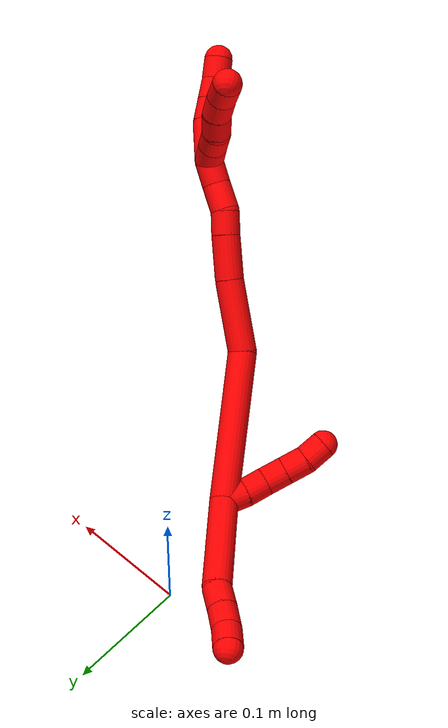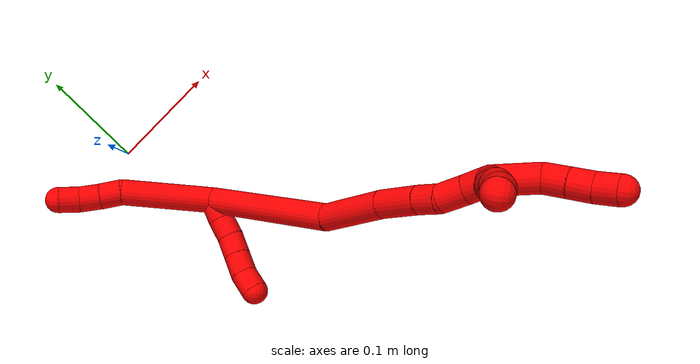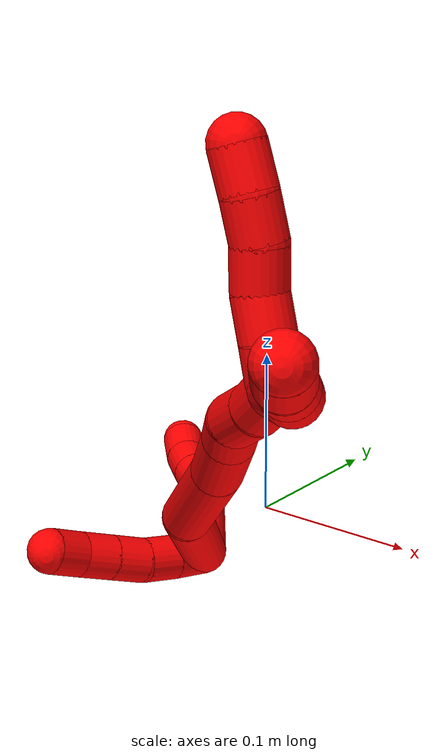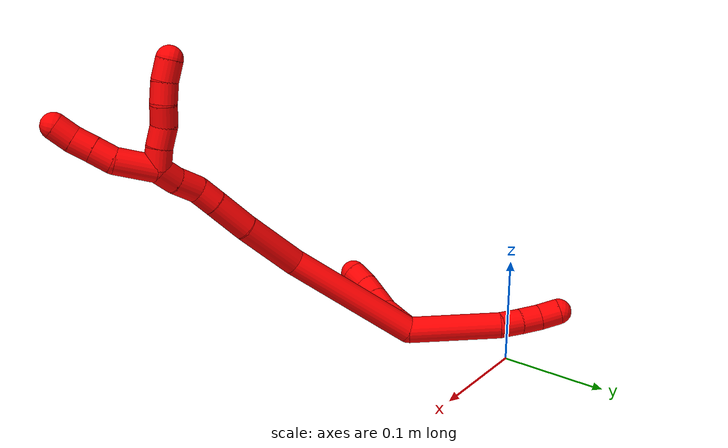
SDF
<sdf version="1.7">
 <world name="default">
  <model name="2">
   <static>0</static>
   <link name="2">
    <collision name="collision-cylinder-e_1_2_8">
     <pose>0.008279 0.007682 -0.042833 -2.96413 0.187995 -1.62873</pose>
     <geometry><cylinder><radius>0.0125</radius><length>0.088594</length></cylinder></geometry>
     <surface>
      <friction><ode><mu>1.16</mu><mu2>1.16</mu2><slip1>0</slip1><slip2>0</slip2></ode></friction>
      <contact><ode><kp>1e+06</kp><kd>1</kd><max_vel>0</max_vel><min_depth>0.001</min_depth></ode></contact>
     </surface>
    </collision>
    <visual name="visual-cylinder-e_1_2_8">
     <pose>0.008279 0.007682 -0.042833 -2.96413 0.187995 -1.62873</pose>
     <geometry><cylinder><radius>0.0125</radius><length>0.088594</length></cylinder></geometry>
     <material><ambient>1 0 0 1</ambient></material>
    </visual>
    <collision name="collision-cylinder-e_2_8_9">
     <pose>0.017019 0.019678 -0.095134 -2.71412 0.044365 -0.203726</pose>
     <geometry><cylinder><radius>0.0125</radius><length>0.020829</length></cylinder></geometry>
     <surface>
      <friction><ode><mu>1.16</mu><mu2>1.16</mu2><slip1>0</slip1><slip2>0</slip2></ode></friction>
      <contact><ode><kp>1e+06</kp><kd>1</kd><max_vel>0</max_vel><min_depth>0.001</min_depth></ode></contact>
     </surface>
    </collision>
    <visual name="visual-cylinder-e_2_8_9">
     <pose>0.017019 0.019678 -0.095134 -2.71412 0.044365 -0.203726</pose>
     <geometry><cylinder><radius>0.0125</radius><length>0.020829</length></cylinder></geometry>
     <material><ambient>1 0 0 1</ambient></material>
    </visual>
    <collision name="collision-cylinder-e_3_9_10">
     <pose>0.018762 0.028102 -0.113902 -2.72538 0.125327 -0.577659</pose>
     <geometry><cylinder><radius>0.0125</radius><length>0.020496</length></cylinder></geometry>
     <surface>
      <friction><ode><mu>1.16</mu><mu2>1.16</mu2><slip1>0</slip1><slip2>0</slip2></ode></friction>
      <contact><ode><kp>1e+06</kp><kd>1</kd><max_vel>0</max_vel><min_depth>0.001</min_depth></ode></contact>
     </surface>
    </collision>
    <visual name="visual-cylinder-e_3_9_10">
     <pose>0.018762 0.028102 -0.113902 -2.72538 0.125327 -0.577659</pose>
     <geometry><cylinder><radius>0.0125</radius><length>0.020496</length></cylinder></geometry>
     <material><ambient>1 0 0 1</ambient></material>
    </visual>
    <collision name="collision-cylinder-e_4_10_6">
     <pose>0.023162 0.035814 -0.13204 -2.75465 0.315883 -1.36512</pose>
     <geometry><cylinder><radius>0.0125</radius><length>0.020081</length></cylinder></geometry>
     <surface>
      <friction><ode><mu>1.16</mu><mu2>1.16</mu2><slip1>0</slip1><slip2>0</slip2></ode></friction>
      <contact><ode><kp>1e+06</kp><kd>1</kd><max_vel>0</max_vel><min_depth>0.001</min_depth></ode></contact>
     </surface>
    </collision>
    <visual name="visual-cylinder-e_4_10_6">
     <pose>0.023162 0.035814 -0.13204 -2.75465 0.315883 -1.36512</pose>
     <geometry><cylinder><radius>0.0125</radius><length>0.020081</length></cylinder></geometry>
     <material><ambient>1 0 0 1</ambient></material>
    </visual>
    <collision name="collision-cylinder-e_1_2_11">
     <pose>-0.004204 0.007346 0.005326 -0.943459 -0.433882 0.223941</pose>
     <geometry><cylinder><radius>0.0125</radius><length>0.02</length></cylinder></geometry>
     <surface>
      <friction><ode><mu>1.16</mu><mu2>1.16</mu2><slip1>0</slip1><slip2>0</slip2></ode></friction>
      <contact><ode><kp>1e+06</kp><kd>1</kd><max_vel>0</max_vel><min_depth>0.001</min_depth></ode></contact>
     </surface>
    </collision>
    <visual name="visual-cylinder-e_1_2_11">
     <pose>-0.004204 0.007346 0.005326 -0.943459 -0.433882 0.223941</pose>
     <geometry><cylinder><radius>0.0125</radius><length>0.02</length></cylinder></geometry>
     <material><ambient>1 0 0 1</ambient></material>
    </visual>
    <collision name="collision-cylinder-e_2_11_12">
     <pose>-0.011541 0.021865 0.016875 -0.856195 -0.318658 0.146391</pose>
     <geometry><cylinder><radius>0.0125</radius><length>0.02</length></cylinder></geometry>
     <surface>
      <friction><ode><mu>1.16</mu><mu2>1.16</mu2><slip1>0</slip1><slip2>0</slip2></ode></friction>
      <contact><ode><kp>1e+06</kp><kd>1</kd><max_vel>0</max_vel><min_depth>0.001</min_depth></ode></contact>
     </surface>
    </collision>
    <visual name="visual-cylinder-e_2_11_12">
     <pose>-0.011541 0.021865 0.016875 -0.856195 -0.318658 0.146391</pose>
     <geometry><cylinder><radius>0.0125</radius><length>0.02</length></cylinder></geometry>
     <material><ambient>1 0 0 1</ambient></material>
    </visual>
    <collision name="collision-cylinder-e_3_12_13">
     <pose>-0.016445 0.037253 0.028519 -0.987546 -0.178102 0.096043</pose>
     <geometry><cylinder><radius>0.0125</radius><length>0.02</length></cylinder></geometry>
     <surface>
      <friction><ode><mu>1.16</mu><mu2>1.16</mu2><slip1>0</slip1><slip2>0</slip2></ode></friction>
      <contact><ode><kp>1e+06</kp><kd>1</kd><max_vel>0</max_vel><min_depth>0.001</min_depth></ode></contact>
     </surface>
    </collision>
    <visual name="visual-cylinder-e_3_12_13">
     <pose>-0.016445 0.037253 0.028519 -0.987546 -0.178102 0.096043</pose>
     <geometry><cylinder><radius>0.0125</radius><length>0.02</length></cylinder></geometry>
     <material><ambient>1 0 0 1</ambient></material>
    </visual>
    <collision name="collision-cylinder-e_4_13_14">
     <pose>-0.019996 0.05368 0.03936 -0.987347 -0.178826 0.096411</pose>
     <geometry><cylinder><radius>0.0125</radius><length>0.02</length></cylinder></geometry>
     <surface>
      <friction><ode><mu>1.16</mu><mu2>1.16</mu2><slip1>0</slip1><slip2>0</slip2></ode></friction>
      <contact><ode><kp>1e+06</kp><kd>1</kd><max_vel>0</max_vel><min_depth>0.001</min_depth></ode></contact>
     </surface>
    </collision>
    <visual name="visual-cylinder-e_4_13_14">
     <pose>-0.019996 0.05368 0.03936 -0.987347 -0.178826 0.096411</pose>
     <geometry><cylinder><radius>0.0125</radius><length>0.02</length></cylinder></geometry>
     <material><ambient>1 0 0 1</ambient></material>
    </visual>
    <collision name="collision-cylinder-e_5_14_5">
     <pose>-0.022569 0.068968 0.051803 -0.789203 -0.079549 0.033142</pose>
     <geometry><cylinder><radius>0.0125</radius><length>0.02</length></cylinder></geometry>
     <surface>
      <friction><ode><mu>1.16</mu><mu2>1.16</mu2><slip1>0</slip1><slip2>0</slip2></ode></friction>
      <contact><ode><kp>1e+06</kp><kd>1</kd><max_vel>0</max_vel><min_depth>0.001</min_depth></ode></contact>
     </surface>
    </collision>
    <visual name="visual-cylinder-e_5_14_5">
     <pose>-0.022569 0.068968 0.051803 -0.789203 -0.079549 0.033142</pose>
     <geometry><cylinder><radius>0.0125</radius><length>0.02</length></cylinder></geometry>
     <material><ambient>1 0 0 1</ambient></material>
    </visual>
    <collision name="collision-cylinder-e_1_2_15">
     <pose>0.02079 0.009919 0.061025 -0.161135 0.324392 -0.026423</pose>
     <geometry><cylinder><radius>0.0125</radius><length>0.130456</length></cylinder></geometry>
     <surface>
      <friction><ode><mu>1.16</mu><mu2>1.16</mu2><slip1>0</slip1><slip2>0</slip2></ode></friction>
      <contact><ode><kp>1e+06</kp><kd>1</kd><max_vel>0</max_vel><min_depth>0.001</min_depth></ode></contact>
     </surface>
    </collision>
    <visual name="visual-cylinder-e_1_2_15">
     <pose>0.02079 0.009919 0.061025 -0.161135 0.324392 -0.026423</pose>
     <geometry><cylinder><radius>0.0125</radius><length>0.130456</length></cylinder></geometry>
     <material><ambient>1 0 0 1</ambient></material>
    </visual>
    <collision name="collision-cylinder-e_2_15_16">
     <pose>0.060178 0.018774 0.14786 0.041213 0.623988 0.013294</pose>
     <geometry><cylinder><radius>0.0125</radius><length>0.063659</length></cylinder></geometry>
     <surface>
      <friction><ode><mu>1.16</mu><mu2>1.16</mu2><slip1>0</slip1><slip2>0</slip2></ode></friction>
      <contact><ode><kp>1e+06</kp><kd>1</kd><max_vel>0</max_vel><min_depth>0.001</min_depth></ode></contact>
     </surface>
    </collision>
    <visual name="visual-cylinder-e_2_15_16">
     <pose>0.060178 0.018774 0.14786 0.041213 0.623988 0.013294</pose>
     <geometry><cylinder><radius>0.0125</radius><length>0.063659</length></cylinder></geometry>
     <material><ambient>1 0 0 1</ambient></material>
    </visual>
    <collision name="collision-cylinder-e_3_16_17">
     <pose>0.089726 0.018919 0.18973 -0.075117 0.597146 -0.023129</pose>
     <geometry><cylinder><radius>0.0125</radius><length>0.038954</length></cylinder></geometry>
     <surface>
      <friction><ode><mu>1.16</mu><mu2>1.16</mu2><slip1>0</slip1><slip2>0</slip2></ode></friction>
      <contact><ode><kp>1e+06</kp><kd>1</kd><max_vel>0</max_vel><min_depth>0.001</min_depth></ode></contact>
     </surface>
    </collision>
    <visual name="visual-cylinder-e_3_16_17">
     <pose>0.089726 0.018919 0.18973 -0.075117 0.597146 -0.023129</pose>
     <geometry><cylinder><radius>0.0125</radius><length>0.038954</length></cylinder></geometry>
     <material><ambient>1 0 0 1</ambient></material>
    </visual>
    <collision name="collision-cylinder-e_4_17_18">
     <pose>0.10615 0.021138 0.214588 -0.114343 0.553539 -0.032513</pose>
     <geometry><cylinder><radius>0.0125</radius><length>0.020818</length></cylinder></geometry>
     <surface>
      <friction><ode><mu>1.16</mu><mu2>1.16</mu2><slip1>0</slip1><slip2>0</slip2></ode></friction>
      <contact><ode><kp>1e+06</kp><kd>1</kd><max_vel>0</max_vel><min_depth>0.001</min_depth></ode></contact>
     </surface>
    </collision>
    <visual name="visual-cylinder-e_4_17_18">
     <pose>0.10615 0.021138 0.214588 -0.114343 0.553539 -0.032513</pose>
     <geometry><cylinder><radius>0.0125</radius><length>0.020818</length></cylinder></geometry>
     <material><ambient>1 0 0 1</ambient></material>
    </visual>
    <collision name="collision-cylinder-e_5_18_19">
     <pose>0.117722 0.01931 0.233744 0.267365 0.516472 0.071014</pose>
     <geometry><cylinder><radius>0.0125</radius><length>0.024705</length></cylinder></geometry>
     <surface>
      <friction><ode><mu>1.16</mu><mu2>1.16</mu2><slip1>0</slip1><slip2>0</slip2></ode></friction>
      <contact><ode><kp>1e+06</kp><kd>1</kd><max_vel>0</max_vel><min_depth>0.001</min_depth></ode></contact>
     </surface>
    </collision>
    <visual name="visual-cylinder-e_5_18_19">
     <pose>0.117722 0.01931 0.233744 0.267365 0.516472 0.071014</pose>
     <geometry><cylinder><radius>0.0125</radius><length>0.024705</length></cylinder></geometry>
     <material><ambient>1 0 0 1</ambient></material>
    </visual>
    <collision name="collision-cylinder-e_6_19_1">
     <pose>0.130413 0.014933 0.252397 0.183568 0.663303 0.063372</pose>
     <geometry><cylinder><radius>0.0125</radius><length>0.021408</length></cylinder></geometry>
     <surface>
      <friction><ode><mu>1.16</mu><mu2>1.16</mu2><slip1>0</slip1><slip2>0</slip2></ode></friction>
      <contact><ode><kp>1e+06</kp><kd>1</kd><max_vel>0</max_vel><min_depth>0.001</min_depth></ode></contact>
     </surface>
    </collision>
    <visual name="visual-cylinder-e_6_19_1">
     <pose>0.130413 0.014933 0.252397 0.183568 0.663303 0.063372</pose>
     <geometry><cylinder><radius>0.0125</radius><length>0.021408</length></cylinder></geometry>
     <material><ambient>1 0 0 1</ambient></material>
    </visual>
    <collision name="collision-cylinder-e_1_1_20">
     <pose>0.139672 0.01051 0.280044 0.147902 0.135558 0.010058</pose>
     <geometry><cylinder><radius>0.0125</radius><length>0.039498</length></cylinder></geometry>
     <surface>
      <friction><ode><mu>1.16</mu><mu2>1.16</mu2><slip1>0</slip1><slip2>0</slip2></ode></friction>
      <contact><ode><kp>1e+06</kp><kd>1</kd><max_vel>0</max_vel><min_depth>0.001</min_depth></ode></contact>
     </surface>
    </collision>
    <visual name="visual-cylinder-e_1_1_20">
     <pose>0.139672 0.01051 0.280044 0.147902 0.135558 0.010058</pose>
     <geometry><cylinder><radius>0.0125</radius><length>0.039498</length></cylinder></geometry>
     <material><ambient>1 0 0 1</ambient></material>
    </visual>
    <collision name="collision-cylinder-e_2_20_21">
     <pose>0.144666 0.00943 0.309205 -0.181906 0.229004 -0.020977</pose>
     <geometry><cylinder><radius>0.0125</radius><length>0.020478</length></cylinder></geometry>
     <surface>
      <friction><ode><mu>1.16</mu><mu2>1.16</mu2><slip1>0</slip1><slip2>0</slip2></ode></friction>
      <contact><ode><kp>1e+06</kp><kd>1</kd><max_vel>0</max_vel><min_depth>0.001</min_depth></ode></contact>
     </surface>
    </collision>
    <visual name="visual-cylinder-e_2_20_21">
     <pose>0.144666 0.00943 0.309205 -0.181906 0.229004 -0.020977</pose>
     <geometry><cylinder><radius>0.0125</radius><length>0.020478</length></cylinder></geometry>
     <material><ambient>1 0 0 1</ambient></material>
    </visual>
    <collision name="collision-cylinder-e_3_21_22">
     <pose>0.149083 0.012916 0.328652 -0.172727 0.210695 -0.018309</pose>
     <geometry><cylinder><radius>0.0125</radius><length>0.020015</length></cylinder></geometry>
     <surface>
      <friction><ode><mu>1.16</mu><mu2>1.16</mu2><slip1>0</slip1><slip2>0</slip2></ode></friction>
      <contact><ode><kp>1e+06</kp><kd>1</kd><max_vel>0</max_vel><min_depth>0.001</min_depth></ode></contact>
     </surface>
    </collision>
    <visual name="visual-cylinder-e_3_21_22">
     <pose>0.149083 0.012916 0.328652 -0.172727 0.210695 -0.018309</pose>
     <geometry><cylinder><radius>0.0125</radius><length>0.020015</length></cylinder></geometry>
     <material><ambient>1 0 0 1</ambient></material>
    </visual>
    <collision name="collision-cylinder-e_4_22_4">
     <pose>0.155003 0.016449 0.347349 -0.201629 0.392564 -0.040223</pose>
     <geometry><cylinder><radius>0.0125</radius><length>0.020009</length></cylinder></geometry>
     <surface>
      <friction><ode><mu>1.16</mu><mu2>1.16</mu2><slip1>0</slip1><slip2>0</slip2></ode></friction>
      <contact><ode><kp>1e+06</kp><kd>1</kd><max_vel>0</max_vel><min_depth>0.001</min_depth></ode></contact>
     </surface>
    </collision>
    <visual name="visual-cylinder-e_4_22_4">
     <pose>0.155003 0.016449 0.347349 -0.201629 0.392564 -0.040223</pose>
     <geometry><cylinder><radius>0.0125</radius><length>0.020009</length></cylinder></geometry>
     <material><ambient>1 0 0 1</ambient></material>
    </visual>
    <collision name="collision-cylinder-e_1_1_23">
     <pose>0.145106 0.019148 0.261799 -1.38026 0.944636 -0.798254</pose>
     <geometry><cylinder><radius>0.0125</radius><length>0.02</length></cylinder></geometry>
     <surface>
      <friction><ode><mu>1.16</mu><mu2>1.16</mu2><slip1>0</slip1><slip2>0</slip2></ode></friction>
      <contact><ode><kp>1e+06</kp><kd>1</kd><max_vel>0</max_vel><min_depth>0.001</min_depth></ode></contact>
     </surface>
    </collision>
    <visual name="visual-cylinder-e_1_1_23">
     <pose>0.145106 0.019148 0.261799 -1.38026 0.944636 -0.798254</pose>
     <geometry><cylinder><radius>0.0125</radius><length>0.02</length></cylinder></geometry>
     <material><ambient>1 0 0 1</ambient></material>
    </visual>
    <collision name="collision-cylinder-e_2_23_24">
     <pose>0.161239 0.030854 0.262607 -1.62149 0.932295 -0.973631</pose>
     <geometry><cylinder><radius>0.0125</radius><length>0.02</length></cylinder></geometry>
     <surface>
      <friction><ode><mu>1.16</mu><mu2>1.16</mu2><slip1>0</slip1><slip2>0</slip2></ode></friction>
      <contact><ode><kp>1e+06</kp><kd>1</kd><max_vel>0</max_vel><min_depth>0.001</min_depth></ode></contact>
     </surface>
    </collision>
    <visual name="visual-cylinder-e_2_23_24">
     <pose>0.161239 0.030854 0.262607 -1.62149 0.932295 -0.973631</pose>
     <geometry><cylinder><radius>0.0125</radius><length>0.02</length></cylinder></geometry>
     <material><ambient>1 0 0 1</ambient></material>
    </visual>
    <collision name="collision-cylinder-e_3_24_25">
     <pose>0.178091 0.041106 0.264224 -1.15104 1.08055 -0.742222</pose>
     <geometry><cylinder><radius>0.0125</radius><length>0.02</length></cylinder></geometry>
     <surface>
      <friction><ode><mu>1.16</mu><mu2>1.16</mu2><slip1>0</slip1><slip2>0</slip2></ode></friction>
      <contact><ode><kp>1e+06</kp><kd>1</kd><max_vel>0</max_vel><min_depth>0.001</min_depth></ode></contact>
     </surface>
    </collision>
    <visual name="visual-cylinder-e_3_24_25">
     <pose>0.178091 0.041106 0.264224 -1.15104 1.08055 -0.742222</pose>
     <geometry><cylinder><radius>0.0125</radius><length>0.02</length></cylinder></geometry>
     <material><ambient>1 0 0 1</ambient></material>
    </visual>
    <collision name="collision-cylinder-e_4_25_26">
     <pose>0.194721 0.051496 0.267538 -1.34565 0.895941 -0.731419</pose>
     <geometry><cylinder><radius>0.0125</radius><length>0.02</length></cylinder></geometry>
     <surface>
      <friction><ode><mu>1.16</mu><mu2>1.16</mu2><slip1>0</slip1><slip2>0</slip2></ode></friction>
      <contact><ode><kp>1e+06</kp><kd>1</kd><max_vel>0</max_vel><min_depth>0.001</min_depth></ode></contact>
     </surface>
    </collision>
    <visual name="visual-cylinder-e_4_25_26">
     <pose>0.194721 0.051496 0.267538 -1.34565 0.895941 -0.731419</pose>
     <geometry><cylinder><radius>0.0125</radius><length>0.02</length></cylinder></geometry>
     <material><ambient>1 0 0 1</ambient></material>
    </visual>
    <collision name="collision-cylinder-e_5_26_3">
     <pose>0.21012 0.064092 0.2687 -1.60647 0.861855 -0.889253</pose>
     <geometry><cylinder><radius>0.0125</radius><length>0.02</length></cylinder></geometry>
     <surface>
      <friction><ode><mu>1.16</mu><mu2>1.16</mu2><slip1>0</slip1><slip2>0</slip2></ode></friction>
      <contact><ode><kp>1e+06</kp><kd>1</kd><max_vel>0</max_vel><min_depth>0.001</min_depth></ode></contact>
     </surface>
    </collision>
    <visual name="visual-cylinder-e_5_26_3">
     <pose>0.21012 0.064092 0.2687 -1.60647 0.861855 -0.889253</pose>
     <geometry><cylinder><radius>0.0125</radius><length>0.02</length></cylinder></geometry>
     <material><ambient>1 0 0 1</ambient></material>
    </visual>
    <collision name="collision-sphere-3">
     <pose>0.21771 0.070599 0.268468 0 -0 0</pose>
     <geometry><sphere><radius>0.0125</radius></sphere></geometry>
     <surface>
      <friction><ode><mu>1.16</mu><mu2>1.16</mu2><slip1>0</slip1><slip2>0</slip2></ode></friction>
      <contact><ode><kp>1e+06</kp><kd>1</kd><max_vel>0</max_vel><min_depth>0.001</min_depth></ode></contact>
     </surface>
    </collision>
    <visual name="visual-sphere-3">
     <pose>0.21771 0.070599 0.268468 0 -0 0</pose>
     <geometry><sphere><radius>0.0125</radius></sphere></geometry>
     <material><ambient>1 0 0 1</ambient></material>
    </visual>
    <collision name="collision-sphere-26">
     <pose>0.202529 0.057586 0.268932 0 -0 0</pose>
     <geometry><sphere><radius>0.0125</radius></sphere></geometry>
     <surface>
      <friction><ode><mu>1.16</mu><mu2>1.16</mu2><slip1>0</slip1><slip2>0</slip2></ode></friction>
      <contact><ode><kp>1e+06</kp><kd>1</kd><max_vel>0</max_vel><min_depth>0.001</min_depth></ode></contact>
     </surface>
    </collision>
    <visual name="visual-sphere-26">
     <pose>0.202529 0.057586 0.268932 0 -0 0</pose>
     <geometry><sphere><radius>0.0125</radius></sphere></geometry>
     <material><ambient>1 0 0 1</ambient></material>
    </visual>
    <collision name="collision-sphere-25">
     <pose>0.186913 0.045406 0.266143 0 -0 0</pose>
     <geometry><sphere><radius>0.0125</radius></sphere></geometry>
     <surface>
      <friction><ode><mu>1.16</mu><mu2>1.16</mu2><slip1>0</slip1><slip2>0</slip2></ode></friction>
      <contact><ode><kp>1e+06</kp><kd>1</kd><max_vel>0</max_vel><min_depth>0.001</min_depth></ode></contact>
     </surface>
    </collision>
    <visual name="visual-sphere-25">
     <pose>0.186913 0.045406 0.266143 0 -0 0</pose>
     <geometry><sphere><radius>0.0125</radius></sphere></geometry>
     <material><ambient>1 0 0 1</ambient></material>
    </visual>
    <collision name="collision-sphere-24">
     <pose>0.169269 0.036807 0.262305 0 -0 0</pose>
     <geometry><sphere><radius>0.0125</radius></sphere></geometry>
     <surface>
      <friction><ode><mu>1.16</mu><mu2>1.16</mu2><slip1>0</slip1><slip2>0</slip2></ode></friction>
      <contact><ode><kp>1e+06</kp><kd>1</kd><max_vel>0</max_vel><min_depth>0.001</min_depth></ode></contact>
     </surface>
    </collision>
    <visual name="visual-sphere-24">
     <pose>0.169269 0.036807 0.262305 0 -0 0</pose>
     <geometry><sphere><radius>0.0125</radius></sphere></geometry>
     <material><ambient>1 0 0 1</ambient></material>
    </visual>
    <collision name="collision-sphere-23">
     <pose>0.153209 0.024902 0.262909 0 -0 0</pose>
     <geometry><sphere><radius>0.0125</radius></sphere></geometry>
     <surface>
      <friction><ode><mu>1.16</mu><mu2>1.16</mu2><slip1>0</slip1><slip2>0</slip2></ode></friction>
      <contact><ode><kp>1e+06</kp><kd>1</kd><max_vel>0</max_vel><min_depth>0.001</min_depth></ode></contact>
     </surface>
    </collision>
    <visual name="visual-sphere-23">
     <pose>0.153209 0.024902 0.262909 0 -0 0</pose>
     <geometry><sphere><radius>0.0125</radius></sphere></geometry>
     <material><ambient>1 0 0 1</ambient></material>
    </visual>
    <collision name="collision-sphere-4">
     <pose>0.158831 0.0183 0.356406 0 -0 0</pose>
     <geometry><sphere><radius>0.0125</radius></sphere></geometry>
     <surface>
      <friction><ode><mu>1.16</mu><mu2>1.16</mu2><slip1>0</slip1><slip2>0</slip2></ode></friction>
      <contact><ode><kp>1e+06</kp><kd>1</kd><max_vel>0</max_vel><min_depth>0.001</min_depth></ode></contact>
     </surface>
    </collision>
    <visual name="visual-sphere-4">
     <pose>0.158831 0.0183 0.356406 0 -0 0</pose>
     <geometry><sphere><radius>0.0125</radius></sphere></geometry>
     <material><ambient>1 0 0 1</ambient></material>
    </visual>
    <collision name="collision-sphere-22">
     <pose>0.151176 0.014598 0.338293 0 -0 0</pose>
     <geometry><sphere><radius>0.0125</radius></sphere></geometry>
     <surface>
      <friction><ode><mu>1.16</mu><mu2>1.16</mu2><slip1>0</slip1><slip2>0</slip2></ode></friction>
      <contact><ode><kp>1e+06</kp><kd>1</kd><max_vel>0</max_vel><min_depth>0.001</min_depth></ode></contact>
     </surface>
    </collision>
    <visual name="visual-sphere-22">
     <pose>0.151176 0.014598 0.338293 0 -0 0</pose>
     <geometry><sphere><radius>0.0125</radius></sphere></geometry>
     <material><ambient>1 0 0 1</ambient></material>
    </visual>
    <collision name="collision-sphere-21">
     <pose>0.14699 0.011234 0.319012 0 -0 0</pose>
     <geometry><sphere><radius>0.0125</radius></sphere></geometry>
     <surface>
      <friction><ode><mu>1.16</mu><mu2>1.16</mu2><slip1>0</slip1><slip2>0</slip2></ode></friction>
      <contact><ode><kp>1e+06</kp><kd>1</kd><max_vel>0</max_vel><min_depth>0.001</min_depth></ode></contact>
     </surface>
    </collision>
    <visual name="visual-sphere-21">
     <pose>0.14699 0.011234 0.319012 0 -0 0</pose>
     <geometry><sphere><radius>0.0125</radius></sphere></geometry>
     <material><ambient>1 0 0 1</ambient></material>
    </visual>
    <collision name="collision-sphere-20">
     <pose>0.142341 0.007626 0.299398 0 -0 0</pose>
     <geometry><sphere><radius>0.0125</radius></sphere></geometry>
     <surface>
      <friction><ode><mu>1.16</mu><mu2>1.16</mu2><slip1>0</slip1><slip2>0</slip2></ode></friction>
      <contact><ode><kp>1e+06</kp><kd>1</kd><max_vel>0</max_vel><min_depth>0.001</min_depth></ode></contact>
     </surface>
    </collision>
    <visual name="visual-sphere-20">
     <pose>0.142341 0.007626 0.299398 0 -0 0</pose>
     <geometry><sphere><radius>0.0125</radius></sphere></geometry>
     <material><ambient>1 0 0 1</ambient></material>
    </visual>
    <collision name="collision-sphere-11">
     <pose>-0.008408 0.014692 0.010652 0 -0 0</pose>
     <geometry><sphere><radius>0.0125</radius></sphere></geometry>
     <surface>
      <friction><ode><mu>1.16</mu><mu2>1.16</mu2><slip1>0</slip1><slip2>0</slip2></ode></friction>
      <contact><ode><kp>1e+06</kp><kd>1</kd><max_vel>0</max_vel><min_depth>0.001</min_depth></ode></contact>
     </surface>
    </collision>
    <visual name="visual-sphere-11">
     <pose>-0.008408 0.014692 0.010652 0 -0 0</pose>
     <geometry><sphere><radius>0.0125</radius></sphere></geometry>
     <material><ambient>1 0 0 1</ambient></material>
    </visual>
    <collision name="collision-sphere-6">
     <pose>0.026281 0.039415 -0.140878 0 -0 0</pose>
     <geometry><sphere><radius>0.0125</radius></sphere></geometry>
     <surface>
      <friction><ode><mu>1.16</mu><mu2>1.16</mu2><slip1>0</slip1><slip2>0</slip2></ode></friction>
      <contact><ode><kp>1e+06</kp><kd>1</kd><max_vel>0</max_vel><min_depth>0.001</min_depth></ode></contact>
     </surface>
    </collision>
    <visual name="visual-sphere-6">
     <pose>0.026281 0.039415 -0.140878 0 -0 0</pose>
     <geometry><sphere><radius>0.0125</radius></sphere></geometry>
     <material><ambient>1 0 0 1</ambient></material>
    </visual>
    <collision name="collision-sphere-10">
     <pose>0.020043 0.032213 -0.123202 0 -0 0</pose>
     <geometry><sphere><radius>0.0125</radius></sphere></geometry>
     <surface>
      <friction><ode><mu>1.16</mu><mu2>1.16</mu2><slip1>0</slip1><slip2>0</slip2></ode></friction>
      <contact><ode><kp>1e+06</kp><kd>1</kd><max_vel>0</max_vel><min_depth>0.001</min_depth></ode></contact>
     </surface>
    </collision>
    <visual name="visual-sphere-10">
     <pose>0.020043 0.032213 -0.123202 0 -0 0</pose>
     <geometry><sphere><radius>0.0125</radius></sphere></geometry>
     <material><ambient>1 0 0 1</ambient></material>
    </visual>
    <collision name="collision-sphere-9">
     <pose>0.017481 0.023991 -0.104602 0 -0 0</pose>
     <geometry><sphere><radius>0.0125</radius></sphere></geometry>
     <surface>
      <friction><ode><mu>1.16</mu><mu2>1.16</mu2><slip1>0</slip1><slip2>0</slip2></ode></friction>
      <contact><ode><kp>1e+06</kp><kd>1</kd><max_vel>0</max_vel><min_depth>0.001</min_depth></ode></contact>
     </surface>
    </collision>
    <visual name="visual-sphere-9">
     <pose>0.017481 0.023991 -0.104602 0 -0 0</pose>
     <geometry><sphere><radius>0.0125</radius></sphere></geometry>
     <material><ambient>1 0 0 1</ambient></material>
    </visual>
    <collision name="collision-sphere-2">
     <geometry><sphere><radius>0.0125</radius></sphere></geometry>
     <surface>
      <friction><ode><mu>1.16</mu><mu2>1.16</mu2><slip1>0</slip1><slip2>0</slip2></ode></friction>
      <contact><ode><kp>1e+06</kp><kd>1</kd><max_vel>0</max_vel><min_depth>0.001</min_depth></ode></contact>
     </surface>
    </collision>
    <visual name="visual-sphere-2">
     <geometry><sphere><radius>0.0125</radius></sphere></geometry>
     <material><ambient>1 0 0 1</ambient></material>
    </visual>
    <collision name="collision-sphere-19">
     <pose>0.123822 0.016473 0.244104 0 -0 0</pose>
     <geometry><sphere><radius>0.0125</radius></sphere></geometry>
     <surface>
      <friction><ode><mu>1.16</mu><mu2>1.16</mu2><slip1>0</slip1><slip2>0</slip2></ode></friction>
      <contact><ode><kp>1e+06</kp><kd>1</kd><max_vel>0</max_vel><min_depth>0.001</min_depth></ode></contact>
     </surface>
    </collision>
    <visual name="visual-sphere-19">
     <pose>0.123822 0.016473 0.244104 0 -0 0</pose>
     <geometry><sphere><radius>0.0125</radius></sphere></geometry>
     <material><ambient>1 0 0 1</ambient></material>
    </visual>
    <collision name="collision-sphere-8">
     <pose>0.016557 0.015364 -0.085666 0 -0 0</pose>
     <geometry><sphere><radius>0.0125</radius></sphere></geometry>
     <surface>
      <friction><ode><mu>1.16</mu><mu2>1.16</mu2><slip1>0</slip1><slip2>0</slip2></ode></friction>
      <contact><ode><kp>1e+06</kp><kd>1</kd><max_vel>0</max_vel><min_depth>0.001</min_depth></ode></contact>
     </surface>
    </collision>
    <visual name="visual-sphere-8">
     <pose>0.016557 0.015364 -0.085666 0 -0 0</pose>
     <geometry><sphere><radius>0.0125</radius></sphere></geometry>
     <material><ambient>1 0 0 1</ambient></material>
    </visual>
    <collision name="collision-sphere-12">
     <pose>-0.014674 0.029038 0.023099 0 -0 0</pose>
     <geometry><sphere><radius>0.0125</radius></sphere></geometry>
     <surface>
      <friction><ode><mu>1.16</mu><mu2>1.16</mu2><slip1>0</slip1><slip2>0</slip2></ode></friction>
      <contact><ode><kp>1e+06</kp><kd>1</kd><max_vel>0</max_vel><min_depth>0.001</min_depth></ode></contact>
     </surface>
    </collision>
    <visual name="visual-sphere-12">
     <pose>-0.014674 0.029038 0.023099 0 -0 0</pose>
     <geometry><sphere><radius>0.0125</radius></sphere></geometry>
     <material><ambient>1 0 0 1</ambient></material>
    </visual>
    <collision name="collision-sphere-13">
     <pose>-0.018217 0.045468 0.033939 0 -0 0</pose>
     <geometry><sphere><radius>0.0125</radius></sphere></geometry>
     <surface>
      <friction><ode><mu>1.16</mu><mu2>1.16</mu2><slip1>0</slip1><slip2>0</slip2></ode></friction>
      <contact><ode><kp>1e+06</kp><kd>1</kd><max_vel>0</max_vel><min_depth>0.001</min_depth></ode></contact>
     </surface>
    </collision>
    <visual name="visual-sphere-13">
     <pose>-0.018217 0.045468 0.033939 0 -0 0</pose>
     <geometry><sphere><radius>0.0125</radius></sphere></geometry>
     <material><ambient>1 0 0 1</ambient></material>
    </visual>
    <collision name="collision-sphere-14">
     <pose>-0.021775 0.061893 0.044782 0 -0 0</pose>
     <geometry><sphere><radius>0.0125</radius></sphere></geometry>
     <surface>
      <friction><ode><mu>1.16</mu><mu2>1.16</mu2><slip1>0</slip1><slip2>0</slip2></ode></friction>
      <contact><ode><kp>1e+06</kp><kd>1</kd><max_vel>0</max_vel><min_depth>0.001</min_depth></ode></contact>
     </surface>
    </collision>
    <visual name="visual-sphere-14">
     <pose>-0.021775 0.061893 0.044782 0 -0 0</pose>
     <geometry><sphere><radius>0.0125</radius></sphere></geometry>
     <material><ambient>1 0 0 1</ambient></material>
    </visual>
    <collision name="collision-sphere-5">
     <pose>-0.023364 0.076044 0.058825 0 -0 0</pose>
     <geometry><sphere><radius>0.0125</radius></sphere></geometry>
     <surface>
      <friction><ode><mu>1.16</mu><mu2>1.16</mu2><slip1>0</slip1><slip2>0</slip2></ode></friction>
      <contact><ode><kp>1e+06</kp><kd>1</kd><max_vel>0</max_vel><min_depth>0.001</min_depth></ode></contact>
     </surface>
    </collision>
    <visual name="visual-sphere-5">
     <pose>-0.023364 0.076044 0.058825 0 -0 0</pose>
     <geometry><sphere><radius>0.0125</radius></sphere></geometry>
     <material><ambient>1 0 0 1</ambient></material>
    </visual>
    <collision name="collision-sphere-15">
     <pose>0.041581 0.019839 0.12205 0 -0 0</pose>
     <geometry><sphere><radius>0.0125</radius></sphere></geometry>
     <surface>
      <friction><ode><mu>1.16</mu><mu2>1.16</mu2><slip1>0</slip1><slip2>0</slip2></ode></friction>
      <contact><ode><kp>1e+06</kp><kd>1</kd><max_vel>0</max_vel><min_depth>0.001</min_depth></ode></contact>
     </surface>
    </collision>
    <visual name="visual-sphere-15">
     <pose>0.041581 0.019839 0.12205 0 -0 0</pose>
     <geometry><sphere><radius>0.0125</radius></sphere></geometry>
     <material><ambient>1 0 0 1</ambient></material>
    </visual>
    <collision name="collision-sphere-16">
     <pose>0.078775 0.01771 0.173669 0 -0 0</pose>
     <geometry><sphere><radius>0.0125</radius></sphere></geometry>
     <surface>
      <friction><ode><mu>1.16</mu><mu2>1.16</mu2><slip1>0</slip1><slip2>0</slip2></ode></friction>
      <contact><ode><kp>1e+06</kp><kd>1</kd><max_vel>0</max_vel><min_depth>0.001</min_depth></ode></contact>
     </surface>
    </collision>
    <visual name="visual-sphere-16">
     <pose>0.078775 0.01771 0.173669 0 -0 0</pose>
     <geometry><sphere><radius>0.0125</radius></sphere></geometry>
     <material><ambient>1 0 0 1</ambient></material>
    </visual>
    <collision name="collision-sphere-17">
     <pose>0.100678 0.020128 0.205791 0 -0 0</pose>
     <geometry><sphere><radius>0.0125</radius></sphere></geometry>
     <surface>
      <friction><ode><mu>1.16</mu><mu2>1.16</mu2><slip1>0</slip1><slip2>0</slip2></ode></friction>
      <contact><ode><kp>1e+06</kp><kd>1</kd><max_vel>0</max_vel><min_depth>0.001</min_depth></ode></contact>
     </surface>
    </collision>
    <visual name="visual-sphere-17">
     <pose>0.100678 0.020128 0.205791 0 -0 0</pose>
     <geometry><sphere><radius>0.0125</radius></sphere></geometry>
     <material><ambient>1 0 0 1</ambient></material>
    </visual>
    <collision name="collision-sphere-18">
     <pose>0.111622 0.022148 0.223385 0 -0 0</pose>
     <geometry><sphere><radius>0.0125</radius></sphere></geometry>
     <surface>
      <friction><ode><mu>1.16</mu><mu2>1.16</mu2><slip1>0</slip1><slip2>0</slip2></ode></friction>
      <contact><ode><kp>1e+06</kp><kd>1</kd><max_vel>0</max_vel><min_depth>0.001</min_depth></ode></contact>
     </surface>
    </collision>
    <visual name="visual-sphere-18">
     <pose>0.111622 0.022148 0.223385 0 -0 0</pose>
     <geometry><sphere><radius>0.0125</radius></sphere></geometry>
     <material><ambient>1 0 0 1</ambient></material>
    </visual>
    <collision name="collision-sphere-1">
     <pose>0.137003 0.013393 0.260689 0 -0 0</pose>
     <geometry><sphere><radius>0.0125</radius></sphere></geometry>
     <surface>
      <friction><ode><mu>1.16</mu><mu2>1.16</mu2><slip1>0</slip1><slip2>0</slip2></ode></friction>
      <contact><ode><kp>1e+06</kp><kd>1</kd><max_vel>0</max_vel><min_depth>0.001</min_depth></ode></contact>
     </surface>
    </collision>
    <visual name="visual-sphere-1">
     <pose>0.137003 0.013393 0.260689 0 -0 0</pose>
     <geometry><sphere><radius>0.0125</radius></sphere></geometry>
     <material><ambient>1 0 0 1</ambient></material>
    </visual>
    <inertial>
     <pose>0.067655 0.021281 0.119871 0 -0 0</pose>
     <mass>0.75</mass>
     <inertia>
      <ixx>0.000179</ixx>
      <ixy>0</ixy>
      <ixz>0</ixz>
      <iyy>0.000192</iyy>
      <iyz>0</iyz>
      <izz>-0.000127</izz>
     </inertia>
    </inertial>
   </link>
   <pose>0.025513 -0.093636 0.01229 1.11434 -1.08056 1.00821</pose>
  </model>
 </world>
</sdf>
